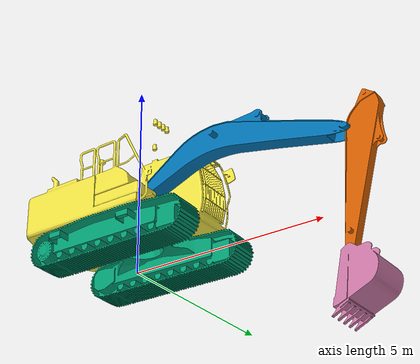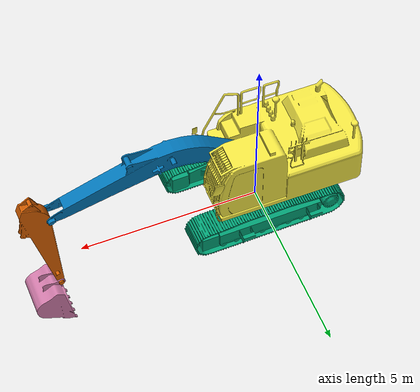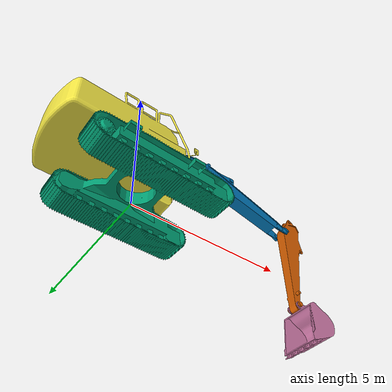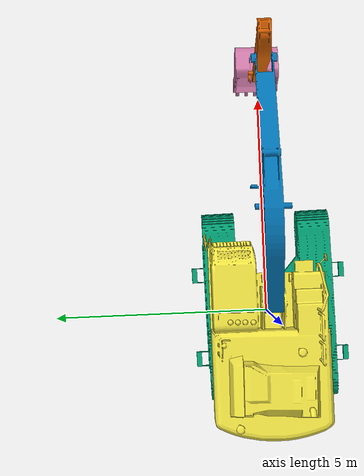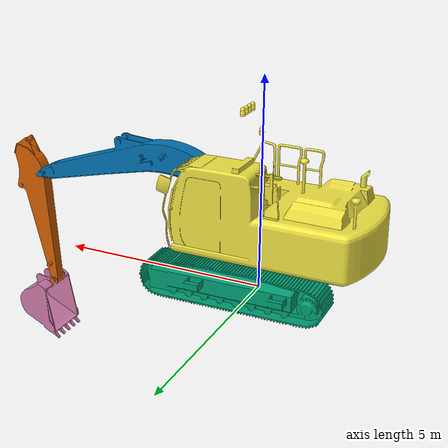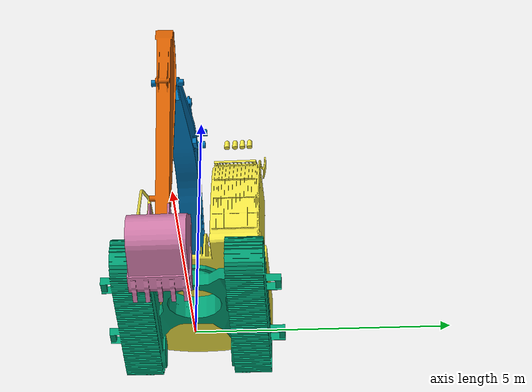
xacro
<?xml version="1.0"?>
<robot name="zx200" xmlns:xacro="http://www.ros.org/wiki/xacro">

	<!-- Import all Gazebo-customization elements, including Gazebo colors -->
	<!-- Import Rviz colors -->

	<!-- RViz and the rest of the project use world as the fixed frame. -->
	<link name="world"/>
	<joint name="world_to_base_link" type="fixed">
		<parent link="world"/>
		<child link="base_link"/>
	</joint>

	<!-- Used for fixing robot to Gazebo 'base_link' -->
	<link name="base_link"/>

	<joint name="base_joint" type="fixed">
		<parent link="base_link"/>
		<child link="track_link"/>
	</joint>

	<!-- Base Link -->
	<link name="track_link">
		<visual>
			<geometry>
				<mesh filename="package://excavator_description/meshes/zx200-crawler.dae"/>
			</geometry>
		</visual>

		<collision>
			<geometry>
				<mesh filename="package://excavator_description/meshes/zx200-crawler-collision.stl"/>
			</geometry>
		</collision>

		<inertial>
			<origin xyz="0 0 0" rpy="0 0 0"/>
			<mass value="0.03"/>
			<inertia ixx="1.0" ixy="0.0" ixz="0.0"
					 iyy="1.0" iyz="0.0"
					 izz="1.0"/>
		</inertial>
	</link>

	<!-- body axis -->
	<joint name="swing_joint" type="revolute">
		<origin xyz="0.10787 -0.034301 1.1206"/>
		<axis xyz="0 0 1"/>
		<parent link="track_link"/>
		<child link="swing_link"/>
		<limit lower="-6.2832" upper="6.2832"
			   effort="5000" velocity="6.159937255"/>
	</joint>

	<link name="swing_link">
		<visual>
			<origin xyz="0 0 0"/>
			<geometry>
				<mesh filename="package://excavator_description/meshes/zx200-body.dae"/>
			</geometry>
		</visual>

		<collision>
			<origin xyz="0 0 0"/>
			<geometry>
				<mesh filename="package://excavator_description/meshes/zx200-body-collision.stl"/>
			</geometry>
		</collision>

		<inertial>
			<origin xyz="0 0 0" rpy="0 0 0"/>
			<mass value="0.03"/>
			<inertia ixx="1.0" ixy="0.0" ixz="0.0"
					 iyy="1.0" iyz="0.0"
					 izz="1.0"/>
		</inertial>
	</link>

	<!-- boom axis -->
	<joint name="boom_joint" type="revolute">
		<origin rpy="0 ${radians(32.0357)} 0"
				xyz="0.05467 -0.040187 0.72492"/>
		<axis xyz="0 1 0"/>
		<parent link="swing_link"/>
		<child link="boom_link"/>
		<limit lower="-1.137"
			   upper="1.0"
			   effort="500"
			   velocity="6.159937255"/>
	</joint>

	<link name="boom_link">
		<visual>
			<origin xyz="0 0 0"/>
			<geometry>
				<mesh filename="package://excavator_description/meshes/zx200-boom.dae"/>
			</geometry>
		</visual>

		<collision>
			<origin xyz="0 0 0"/>
			<geometry>
				<mesh filename="package://excavator_description/meshes/zx200-boom-collision.stl"/>
			</geometry>
		</collision>

		<inertial>
			<origin xyz="0 0 0" rpy="0 0 0"/>
			<mass value="0.03"/>
			<inertia ixx="1.0" ixy="0.0" ixz="0.0"
					 iyy="1.0" iyz="0.0"
					 izz="1.0"/>
		</inertial>
	</link>

	<joint name="stick_joint" type="revolute">
		<origin rpy="0 ${radians(16.9707)} 0"
				xyz="4.83998 0.010957 3.00227"/>
		<axis xyz="0 1 0"/>
		<parent link="boom_link"/>
		<child link="stick_link"/>
		<limit lower="0.594"
			   upper="2.687"
			   effort="500"
			   velocity="6.159937255"/>
	</joint>

	<link name="stick_link">
		<visual>
			<origin xyz="0 0 0"/>
			<geometry>
				<mesh filename="package://excavator_description/meshes/zx200-arm.dae"/>
			</geometry>
		</visual>

		<collision>
			<origin xyz="0 0 0"/>
			<geometry>
				<mesh filename="package://excavator_description/meshes/zx200-arm-collision.stl"/>
			</geometry>
		</collision>

		<inertial>
			<origin xyz="0 0 0" rpy="0 0 0"/>
			<mass value="0.03"/>
			<inertia ixx="1.0" ixy="0.0" ixz="0.0"
					 iyy="1.0" iyz="0.0"
					 izz="1.0"/>
		</inertial>
	</link>

	<!-- bucket axis -->
	<joint name="bucket_joint" type="revolute">
		<origin rpy="0 ${radians(-9.20083)} 0"
				xyz="1.91546 -0.023546 2.17374"/>
		<axis xyz="0 1 0"/>
		<parent link="stick_link"/>
		<child link="bucket_link"/>
		<limit lower="-0.622"
			   upper="2.372"
			   effort="50000"
			   velocity="6.159937255"/>
	</joint>

	<link name="bucket_link">
		<visual>
			<origin xyz="0 0 0"/>
			<geometry>
				<mesh filename="package://excavator_description/meshes/zx200-bucket.dae"/>
			</geometry>
		</visual>

		<collision>
			<origin xyz="0 0 0"/>
			<geometry>
				<mesh filename="package://excavator_description/meshes/zx200-bucket-collision.stl"/>
			</geometry>
		</collision>

		<inertial>
			<origin xyz="0 0 0" rpy="0 0 0"/>
			<mass value="0.03"/>
			<inertia ixx="1.0" ixy="0.0" ixz="0.0"
					 iyy="1.0" iyz="0.0"
					 izz="1.0"/>
		</inertial>
	</link>

	<link name="bucket_tip">
		<visual>
			<origin xyz="0 0 0" rpy="0 0 0"/>
			<geometry>
				<box size="0.001 0.001 0.001"/>
			</geometry>
		</visual>

		<inertial>
			<origin xyz="0 0 0"/>
			<mass value="1.0e-03"/>
			<inertia ixx="1.0e-03" ixy="0.0" ixz="0.0"
					 iyy="1.0e-03" iyz="0.0"
					 izz="1.0e-03"/>
		</inertial>
	</link>

	<joint name="bucket_tip_joint" type="fixed">
		<parent link="bucket_link"/>
		<child link="bucket_tip"/>
		<origin xyz="1.13012 0 0.93856" rpy="0 0 0"/>
	</joint>

	<transmission name="tran1">
		<type>transmission_interface/SimpleTransmission</type>
		<joint name="swing_joint">
			<hardwareInterface>
				hardware_interface/EffortJointInterface
			</hardwareInterface>
		</joint>
		<actuator name="motor1">
			<hardwareInterface>
				hardware_interface/EffortJointInterface
			</hardwareInterface>
			<mechanicalReduction>1</mechanicalReduction>
		</actuator>
	</transmission>

	<transmission name="tran2">
		<type>transmission_interface/SimpleTransmission</type>
		<joint name="boom_joint">
			<hardwareInterface>
				hardware_interface/EffortJointInterface
			</hardwareInterface>
		</joint>
		<actuator name="motor2">
			<hardwareInterface>
				hardware_interface/EffortJointInterface
			</hardwareInterface>
			<mechanicalReduction>1</mechanicalReduction>
		</actuator>
	</transmission>

	<transmission name="tran3">
		<type>transmission_interface/SimpleTransmission</type>
		<joint name="stick_joint">
			<hardwareInterface>
				hardware_interface/EffortJointInterface
			</hardwareInterface>
		</joint>
		<actuator name="motor3">
			<hardwareInterface>
				hardware_interface/EffortJointInterface
			</hardwareInterface>
			<mechanicalReduction>1</mechanicalReduction>
		</actuator>
	</transmission>

	<transmission name="tran4">
		<type>transmission_interface/SimpleTransmission</type>
		<joint name="bucket_joint">
			<hardwareInterface>
				hardware_interface/EffortJointInterface
			</hardwareInterface>
		</joint>
		<actuator name="motor4">
			<hardwareInterface>
				hardware_interface/EffortJointInterface
			</hardwareInterface>
			<mechanicalReduction>1</mechanicalReduction>
		</actuator>
	</transmission>

</robot>
